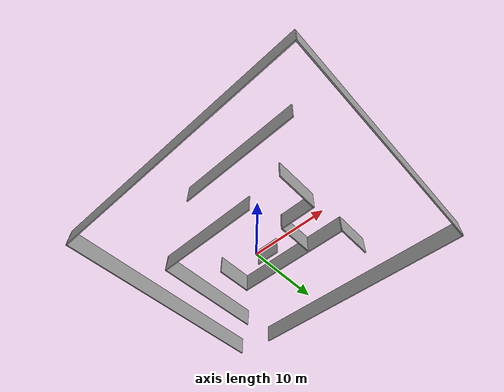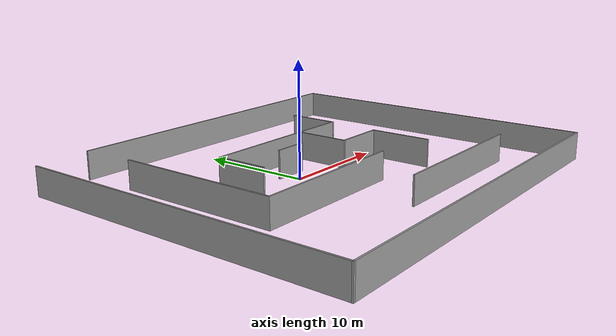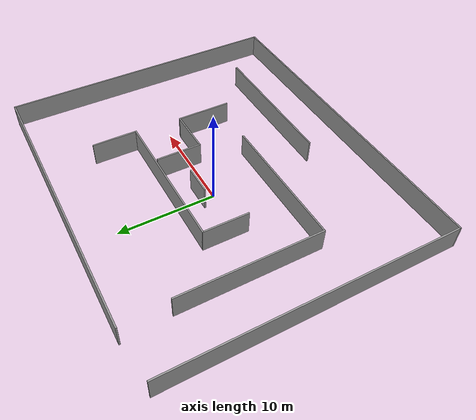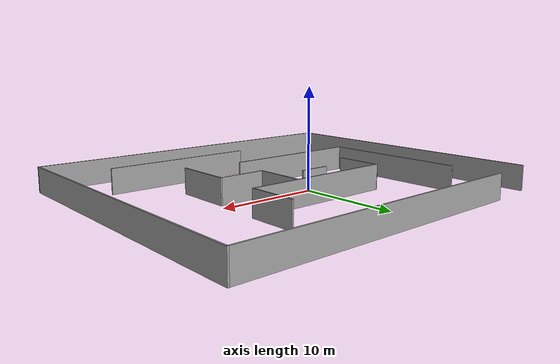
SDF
<?xml version='1.0'?>
<sdf version='1.7'>
  <model name='maze'>
    <pose>2.08383 -1.16079 0 0 -0 0</pose>
    <link name='Wall_0'>
      <collision name='Wall_0_Collision'>
        <geometry>
          <box>
            <size>3 0.15 2.5</size>
          </box>
        </geometry>
        <pose>0 0 1.25 0 -0 0</pose>
      </collision>
      <visual name='Wall_0_Visual'>
        <pose>0 0 1.25 0 -0 0</pose>
        <geometry>
          <box>
            <size>3 0.15 2.5</size>
          </box>
        </geometry>
        <material>
          <script>
            <uri>file://media/materials/scripts/gazebo.material</uri>
            <name>Gazebo/Grey</name>
          </script>
          <ambient>1 1 1 1</ambient>
        </material>
        <meta>
          <layer>0</layer>
        </meta>
      </visual>
      <pose>-1.53162 2.55759 0 0 -0 3.14159</pose>
    </link>
    <link name='Wall_13'>
      <collision name='Wall_13_Collision'>
        <geometry>
          <box>
            <size>4.75 0.15 2.5</size>
          </box>
        </geometry>
        <pose>0 0 1.25 0 -0 0</pose>
      </collision>
      <visual name='Wall_13_Visual'>
        <pose>0 0 1.25 0 -0 0</pose>
        <geometry>
          <box>
            <size>4.75 0.15 2.5</size>
          </box>
        </geometry>
        <material>
          <script>
            <uri>file://media/materials/scripts/gazebo.material</uri>
            <name>Gazebo/Grey</name>
          </script>
          <ambient>1 1 1 1</ambient>
        </material>
        <meta>
          <layer>0</layer>
        </meta>
      </visual>
      <pose>-7.39507 2.72684 0 0 -0 1.5708</pose>
    </link>
    <link name='Wall_14'>
      <collision name='Wall_14_Collision'>
        <geometry>
          <box>
            <size>15.25 0.15 2.5</size>
          </box>
        </geometry>
        <pose>0 0 1.25 0 -0 0</pose>
      </collision>
      <visual name='Wall_14_Visual'>
        <pose>0 0 1.25 0 -0 0</pose>
        <geometry>
          <box>
            <size>15.25 0.15 2.5</size>
          </box>
        </geometry>
        <material>
          <script>
            <uri>file://media/materials/scripts/gazebo.material</uri>
            <name>Gazebo/Grey</name>
          </script>
          <ambient>1 1 1 1</ambient>
        </material>
        <meta>
          <layer>0</layer>
        </meta>
      </visual>
      <pose>0.154927 5.02684 0 0 -0 0</pose>
    </link>
    <link name='Wall_15'>
      <collision name='Wall_15_Collision'>
        <geometry>
          <box>
            <size>4.75 0.15 2.5</size>
          </box>
        </geometry>
        <pose>0 0 1.25 0 -0 0</pose>
      </collision>
      <visual name='Wall_15_Visual'>
        <pose>0 0 1.25 0 -0 0</pose>
        <geometry>
          <box>
            <size>4.75 0.15 2.5</size>
          </box>
        </geometry>
        <material>
          <script>
            <uri>file://media/materials/scripts/gazebo.material</uri>
            <name>Gazebo/Grey</name>
          </script>
          <ambient>1 1 1 1</ambient>
        </material>
        <meta>
          <layer>0</layer>
        </meta>
      </visual>
      <pose>7.70493 7.32684 0 0 -0 1.5708</pose>
    </link>
    <link name='Wall_17'>
      <collision name='Wall_17_Collision'>
        <geometry>
          <box>
            <size>4.75 0.15 2.5</size>
          </box>
        </geometry>
        <pose>0 0 1.25 0 -0 0</pose>
      </collision>
      <visual name='Wall_17_Visual'>
        <pose>0 0 1.25 0 -0 0</pose>
        <geometry>
          <box>
            <size>4.75 0.15 2.5</size>
          </box>
        </geometry>
        <material>
          <script>
            <uri>file://media/materials/scripts/gazebo.material</uri>
            <name>Gazebo/Grey</name>
          </script>
          <ambient>1 1 1 1</ambient>
        </material>
        <meta>
          <layer>0</layer>
        </meta>
      </visual>
      <pose>2.80958 2.44014 0 0 -0 -1.5708</pose>
    </link>
    <link name='Wall_18'>
      <collision name='Wall_18_Collision'>
        <geometry>
          <box>
            <size>4.75 0.15 2.5</size>
          </box>
        </geometry>
        <pose>0 0 1.25 0 -0 0</pose>
      </collision>
      <visual name='Wall_18_Visual'>
        <pose>0 0 1.25 0 -0 0</pose>
        <geometry>
          <box>
            <size>4.75 0.15 2.5</size>
          </box>
        </geometry>
        <material>
          <script>
            <uri>file://media/materials/scripts/gazebo.material</uri>
            <name>Gazebo/Grey</name>
          </script>
          <ambient>1 1 1 1</ambient>
        </material>
        <meta>
          <layer>0</layer>
        </meta>
      </visual>
      <pose>5.10958 0.140145 0 0 -0 0</pose>
    </link>
    <link name='Wall_19'>
      <collision name='Wall_19_Collision'>
        <geometry>
          <box>
            <size>5.75 0.15 2.5</size>
          </box>
        </geometry>
        <pose>0 0 1.25 0 -0 0</pose>
      </collision>
      <visual name='Wall_19_Visual'>
        <pose>0 0 1.25 0 -0 0</pose>
        <geometry>
          <box>
            <size>5.75 0.15 2.5</size>
          </box>
        </geometry>
        <material>
          <script>
            <uri>file://media/materials/scripts/gazebo.material</uri>
            <name>Gazebo/Grey</name>
          </script>
          <ambient>1 1 1 1</ambient>
        </material>
        <meta>
          <layer>0</layer>
        </meta>
      </visual>
      <pose>7.40958 -2.65985 0 0 -0 -1.5708</pose>
    </link>
    <link name='Wall_21'>
      <collision name='Wall_21_Collision'>
        <geometry>
          <box>
            <size>15 0.15 2.5</size>
          </box>
        </geometry>
        <pose>0 0 1.25 0 -0 0</pose>
      </collision>
      <visual name='Wall_21_Visual'>
        <pose>0 0 1.25 0 -0 0</pose>
        <geometry>
          <box>
            <size>15 0.15 2.5</size>
          </box>
        </geometry>
        <material>
          <script>
            <uri>file://media/materials/scripts/gazebo.material</uri>
            <name>Gazebo/Grey</name>
          </script>
          <ambient>1 1 1 1</ambient>
        </material>
        <meta>
          <layer>0</layer>
        </meta>
      </visual>
      <pose>5.29006 -9.77781 0 0 -0 0</pose>
    </link>
    <link name='Wall_3'>
      <collision name='Wall_3_Collision'>
        <geometry>
          <box>
            <size>30.25 0.15 2.5</size>
          </box>
        </geometry>
        <pose>0 0 1.25 0 -0 0</pose>
      </collision>
      <visual name='Wall_3_Visual'>
        <pose>0 0 1.25 0 -0 0</pose>
        <geometry>
          <box>
            <size>30.25 0.15 2.5</size>
          </box>
        </geometry>
        <material>
          <script>
            <uri>file://media/materials/scripts/gazebo.material</uri>
            <name>Gazebo/Grey</name>
          </script>
          <ambient>1 1 1 1</ambient>
        </material>
        <meta>
          <layer>0</layer>
        </meta>
      </visual>
      <pose>2.5 15.05 0 0 -0 0</pose>
    </link>
    <link name='Wall_4'>
      <collision name='Wall_4_Collision'>
        <geometry>
          <box>
            <size>30.25 0.15 2.5</size>
          </box>
        </geometry>
        <pose>0 0 1.25 0 -0 0</pose>
      </collision>
      <visual name='Wall_4_Visual'>
        <pose>0 0 1.25 0 -0 0</pose>
        <geometry>
          <box>
            <size>30.25 0.15 2.5</size>
          </box>
        </geometry>
        <material>
          <script>
            <uri>file://media/materials/scripts/gazebo.material</uri>
            <name>Gazebo/Grey</name>
          </script>
          <ambient>1 1 1 1</ambient>
        </material>
        <meta>
          <layer>0</layer>
        </meta>
      </visual>
      <pose>17.55 -0 0 0 -0 -1.5708</pose>
    </link>
    <link name='Wall_5'>
      <collision name='Wall_5_Collision'>
        <geometry>
          <box>
            <size>35.25 0.15 2.5</size>
          </box>
        </geometry>
        <pose>0 0 1.25 0 -0 0</pose>
      </collision>
      <visual name='Wall_5_Visual'>
        <pose>0 0 1.25 0 -0 0</pose>
        <geometry>
          <box>
            <size>35.25 0.15 2.5</size>
          </box>
        </geometry>
        <material>
          <script>
            <uri>file://media/materials/scripts/gazebo.material</uri>
            <name>Gazebo/Grey</name>
          </script>
          <ambient>1 1 1 1</ambient>
        </material>
        <meta>
          <layer>0</layer>
        </meta>
      </visual>
      <pose>-1e-06 -15.05 0 0 -0 3.14159</pose>
    </link>
    <link name='Wall_6'>
      <collision name='Wall_6_Collision'>
        <geometry>
          <box>
            <size>29.75 0.15 2.5</size>
          </box>
        </geometry>
        <pose>0 0 1.25 0 -0 0</pose>
      </collision>
      <visual name='Wall_6_Visual'>
        <pose>0 0 1.25 0 -0 0</pose>
        <geometry>
          <box>
            <size>29.75 0.15 2.5</size>
          </box>
        </geometry>
        <material>
          <script>
            <uri>file://media/materials/scripts/gazebo.material</uri>
            <name>Gazebo/Grey</name>
          </script>
          <ambient>1 1 1 1</ambient>
        </material>
        <meta>
          <layer>0</layer>
        </meta>
      </visual>
      <pose>-17.55 -0.25 0 0 -0 1.5708</pose>
    </link>
    <link name='Wall_8'>
      <collision name='Wall_8_Collision'>
        <geometry>
          <box>
            <size>14.75 0.15 2.5</size>
          </box>
        </geometry>
        <pose>0 0 1.25 0 -0 0</pose>
      </collision>
      <visual name='Wall_8_Visual'>
        <pose>0 0 1.25 0 -0 0</pose>
        <geometry>
          <box>
            <size>14.75 0.15 2.5</size>
          </box>
        </geometry>
        <material>
          <script>
            <uri>file://media/materials/scripts/gazebo.material</uri>
            <name>Gazebo/Grey</name>
          </script>
          <ambient>1 1 1 1</ambient>
        </material>
        <meta>
          <layer>0</layer>
        </meta>
      </visual>
      <pose>-12.2344 2.91068 0 0 -0 -1.5708</pose>
    </link>
    <link name='Wall_9'>
      <collision name='Wall_9_Collision'>
        <geometry>
          <box>
            <size>14.25 0.15 2.5</size>
          </box>
        </geometry>
        <pose>0 0 1.25 0 -0 0</pose>
      </collision>
      <visual name='Wall_9_Visual'>
        <pose>0 0 1.25 0 -0 0</pose>
        <geometry>
          <box>
            <size>14.25 0.15 2.5</size>
          </box>
        </geometry>
        <material>
          <script>
            <uri>file://media/materials/scripts/gazebo.material</uri>
            <name>Gazebo/Grey</name>
          </script>
          <ambient>1 1 1 1</ambient>
        </material>
        <meta>
          <layer>0</layer>
        </meta>
      </visual>
      <pose>-5.18439 -4.38932 0 0 -0 0</pose>
    </link>
    <static>1</static>
  </model>
</sdf>
